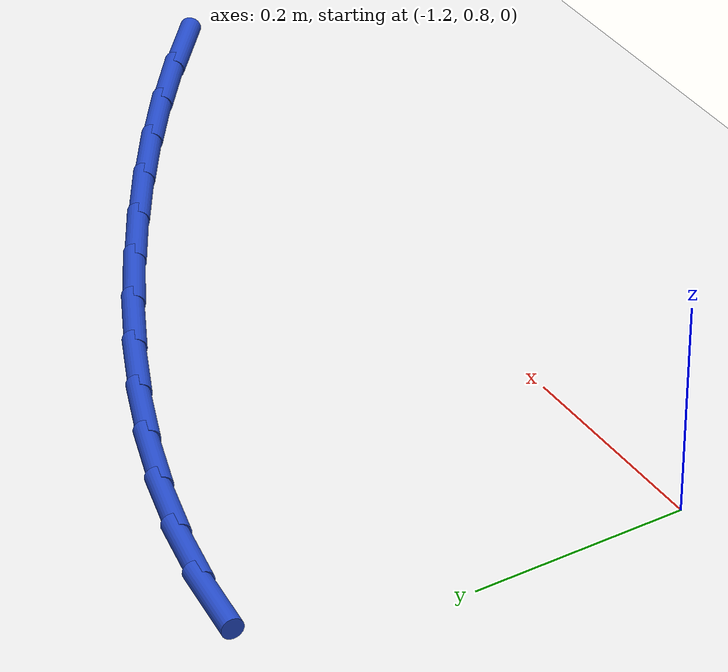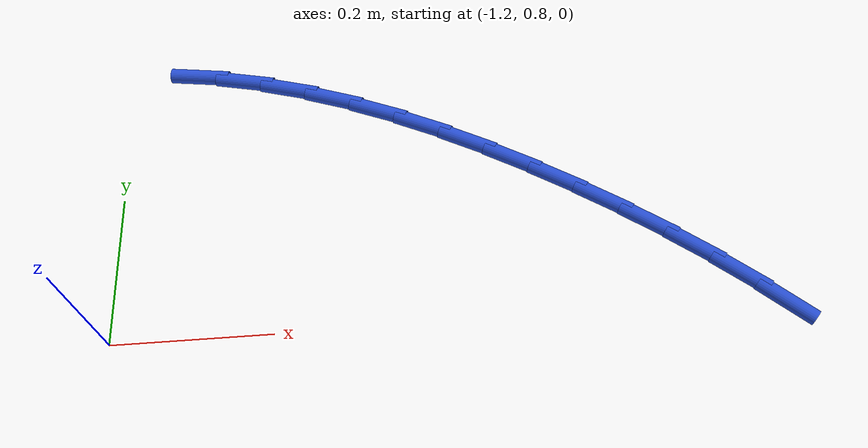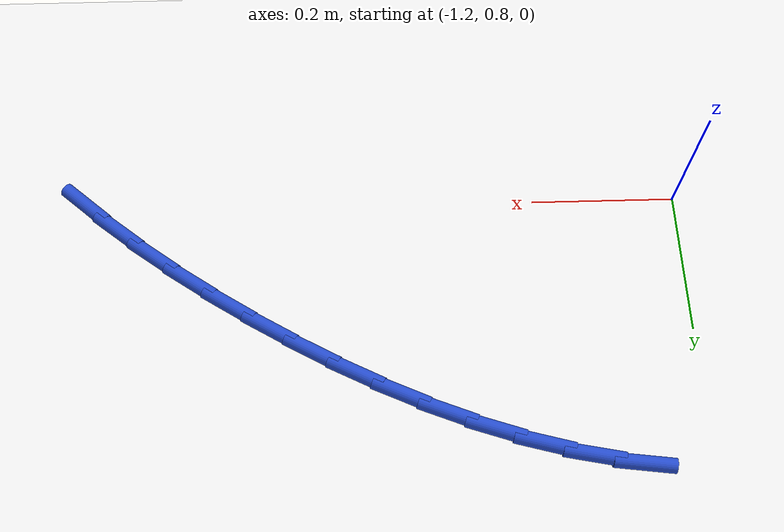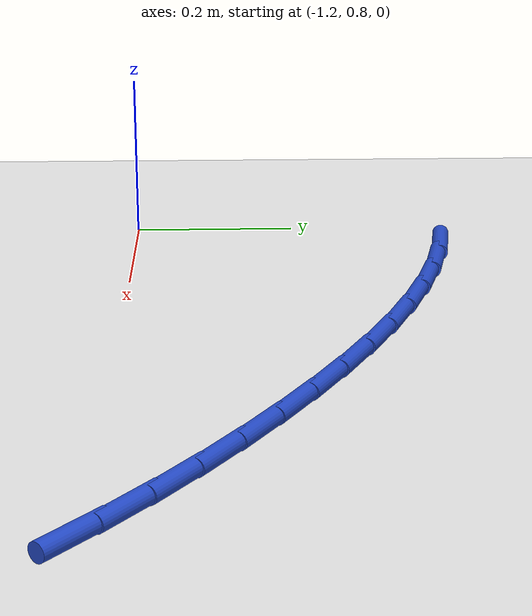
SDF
<sdf version="1.6">
 <world name="default">
  <model name="ground_plane">
   <static>1</static>
   <link name="link">
    <collision name="collision">
     <geometry><plane><normal>0 0 1</normal><size>100 100</size></plane></geometry>
     <surface><friction><ode><mu>100</mu><mu2>50</mu2></ode></friction></surface>
    </collision>
    <visual name="visual">
     <cast_shadows>0</cast_shadows>
     <geometry><plane><normal>0 0 1</normal><size>100 100</size></plane></geometry>
     <material>
      <script><uri>file://media/materials/scripts/gazebo.material</uri><name>Gazebo/WhiteGlow</name></script>
     </material>
    </visual>
   </link>
  </model>
  <model name="line">
   <link name="link_14">
    <pose>-0.370600811840152 0.7929210064664515 0.01 0 1.57 -0.7212053479517131</pose>
    <collision name="collision">
     <geometry><cylinder><radius>0.01</radius><length>0.08</length></cylinder></geometry>
    </collision>
    <visual name="visual">
     <material>
      <script><name>Gazebo/Blue</name><uri>file://media/materials/scripts/gazebo.material</uri></script>
     </material>
     <geometry><cylinder><radius>0.01</radius><length>0.08</length></cylinder></geometry>
    </visual>
   </link>
   <link name="link_15">
    <pose>-0.41898967701988404 0.8354646282220785 0.01 0 1.57 -0.6798157838080761</pose>
    <collision name="collision">
     <geometry><cylinder><radius>0.01</radius><length>0.08</length></cylinder></geometry>
    </collision>
    <visual name="visual">
     <material>
      <script><name>Gazebo/Blue</name><uri>file://media/materials/scripts/gazebo.material</uri></script>
     </material>
     <geometry><cylinder><radius>0.01</radius><length>0.08</length></cylinder></geometry>
    </visual>
   </link>
   <link name="link_16">
    <pose>-0.46936150816424826 0.8761830373955278 0.01 0 1.57 -0.641478734929899</pose>
    <collision name="collision">
     <geometry><cylinder><radius>0.01</radius><length>0.08</length></cylinder></geometry>
    </collision>
    <visual name="visual">
     <material>
      <script><name>Gazebo/Blue</name><uri>file://media/materials/scripts/gazebo.material</uri></script>
     </material>
     <geometry><cylinder><radius>0.01</radius><length>0.08</length></cylinder></geometry>
    </visual>
   </link>
   <link name="link_17">
    <pose>-0.521531844142078 0.9151461826955434 0.01 0 1.57 -0.6060785149337015</pose>
    <collision name="collision">
     <geometry><cylinder><radius>0.01</radius><length>0.08</length></cylinder></geometry>
    </collision>
    <visual name="visual">
     <material>
      <script><name>Gazebo/Blue</name><uri>file://media/materials/scripts/gazebo.material</uri></script>
     </material>
     <geometry><cylinder><radius>0.01</radius><length>0.08</length></cylinder></geometry>
    </visual>
   </link>
   <link name="link_18">
    <pose>-0.5753162238222072 0.9524240128308689 0.01 0 1.57 -0.5734845717727802</pose>
    <collision name="collision">
     <geometry><cylinder><radius>0.01</radius><length>0.08</length></cylinder></geometry>
    </collision>
    <visual name="visual">
     <material>
      <script><name>Gazebo/Blue</name><uri>file://media/materials/scripts/gazebo.material</uri></script>
     </material>
     <geometry><cylinder><radius>0.01</radius><length>0.08</length></cylinder></geometry>
    </visual>
   </link>
   <link name="link_19">
    <pose>-0.6305301860734687 0.988086476510247 0.01 0 1.57 -0.5430405114244611</pose>
    <collision name="collision">
     <geometry><cylinder><radius>0.01</radius><length>0.08</length></cylinder></geometry>
    </collision>
    <visual name="visual">
     <material>
      <script><name>Gazebo/Blue</name><uri>file://media/materials/scripts/gazebo.material</uri></script>
     </material>
     <geometry><cylinder><radius>0.01</radius><length>0.08</length></cylinder></geometry>
    </visual>
   </link>
   <link name="link_20">
    <pose>-0.6869964296114566 1.0221678182949785 0.01 0 1.57 -0.5103220866287561</pose>
    <collision name="collision">
     <geometry><cylinder><radius>0.01</radius><length>0.08</length></cylinder></geometry>
    </collision>
    <visual name="visual">
     <material>
      <script><name>Gazebo/Blue</name><uri>file://media/materials/scripts/gazebo.material</uri></script>
     </material>
     <geometry><cylinder><radius>0.01</radius><length>0.08</length></cylinder></geometry>
    </visual>
   </link>
   <link name="link_21">
    <pose>-0.7445960581130336 1.0544110335872108 0.01 0 1.57 -0.4729446197816948</pose>
    <collision name="collision">
     <geometry><cylinder><radius>0.01</radius><length>0.08</length></cylinder></geometry>
    </collision>
    <visual name="visual">
     <material>
      <script><name>Gazebo/Blue</name><uri>file://media/materials/scripts/gazebo.material</uri></script>
     </material>
     <geometry><cylinder><radius>0.01</radius><length>0.08</length></cylinder></geometry>
    </visual>
   </link>
   <link name="link_22">
    <pose>-0.8032386662057509 1.0844170414097716 0.01 0 1.57 -0.43051380497742997</pose>
    <collision name="collision">
     <geometry><cylinder><radius>0.01</radius><length>0.08</length></cylinder></geometry>
    </collision>
    <visual name="visual">
     <material>
      <script><name>Gazebo/Blue</name><uri>file://media/materials/scripts/gazebo.material</uri></script>
     </material>
     <geometry><cylinder><radius>0.01</radius><length>0.08</length></cylinder></geometry>
    </visual>
   </link>
   <link name="link_23">
    <pose>-0.8628340406525757 1.1117858026600604 0.01 0 1.57 -0.38261925978979</pose>
    <collision name="collision">
     <geometry><cylinder><radius>0.01</radius><length>0.08</length></cylinder></geometry>
    </collision>
    <visual name="visual">
     <material>
      <script><name>Gazebo/Blue</name><uri>file://media/materials/scripts/gazebo.material</uri></script>
     </material>
     <geometry><cylinder><radius>0.01</radius><length>0.08</length></cylinder></geometry>
    </visual>
   </link>
   <link name="link_24">
    <pose>-0.9232919682164759 1.1361172782354778 0.01 0 1.57 -0.3288486353612544</pose>
    <collision name="collision">
     <geometry><cylinder><radius>0.01</radius><length>0.08</length></cylinder></geometry>
    </collision>
    <visual name="visual">
     <material>
      <script><name>Gazebo/Blue</name><uri>file://media/materials/scripts/gazebo.material</uri></script>
     </material>
     <geometry><cylinder><radius>0.01</radius><length>0.08</length></cylinder></geometry>
    </visual>
   </link>
   <link name="link_25">
    <pose>-0.9845222356604183 1.1570114290334244 0.01 0 1.57 -0.26882983171710606</pose>
    <collision name="collision">
     <geometry><cylinder><radius>0.01</radius><length>0.08</length></cylinder></geometry>
    </collision>
    <visual name="visual">
     <material>
      <script><name>Gazebo/Blue</name><uri>file://media/materials/scripts/gazebo.material</uri></script>
     </material>
     <geometry><cylinder><radius>0.01</radius><length>0.08</length></cylinder></geometry>
    </visual>
   </link>
   <link name="link_26">
    <pose>-1.0464346297473708 1.1740682159513 0.01 0 1.57 -0.20229073090653463</pose>
    <collision name="collision">
     <geometry><cylinder><radius>0.01</radius><length>0.08</length></cylinder></geometry>
    </collision>
    <visual name="visual">
     <material>
      <script><name>Gazebo/Blue</name><uri>file://media/materials/scripts/gazebo.material</uri></script>
     </material>
     <geometry><cylinder><radius>0.01</radius><length>0.08</length></cylinder></geometry>
    </visual>
   </link>
   <link name="link_27">
    <pose>-1.1089389372403007 1.1868875998865056 0.01 0 1.57 -0.1291370425537614</pose>
    <collision name="collision">
     <geometry><cylinder><radius>0.01</radius><length>0.08</length></cylinder></geometry>
    </collision>
    <visual name="visual">
     <material>
      <script><name>Gazebo/Blue</name><uri>file://media/materials/scripts/gazebo.material</uri></script>
     </material>
     <geometry><cylinder><radius>0.01</radius><length>0.08</length></cylinder></geometry>
    </visual>
   </link>
  </model>
 </world>
</sdf>
